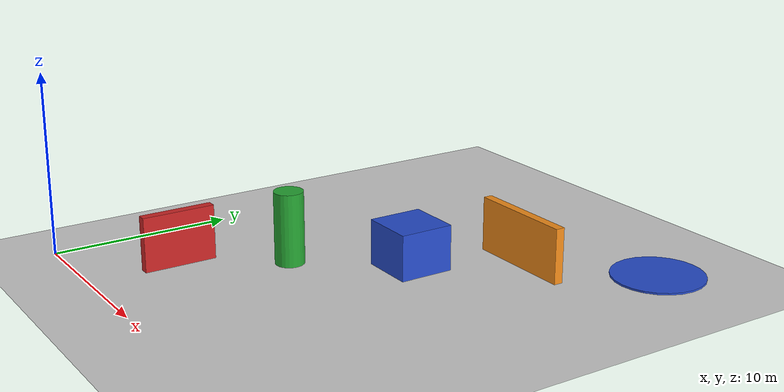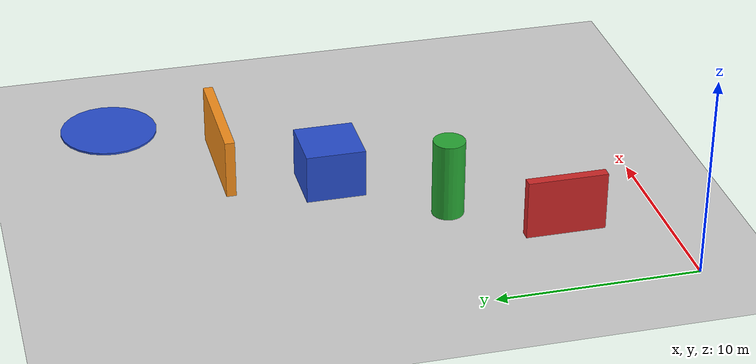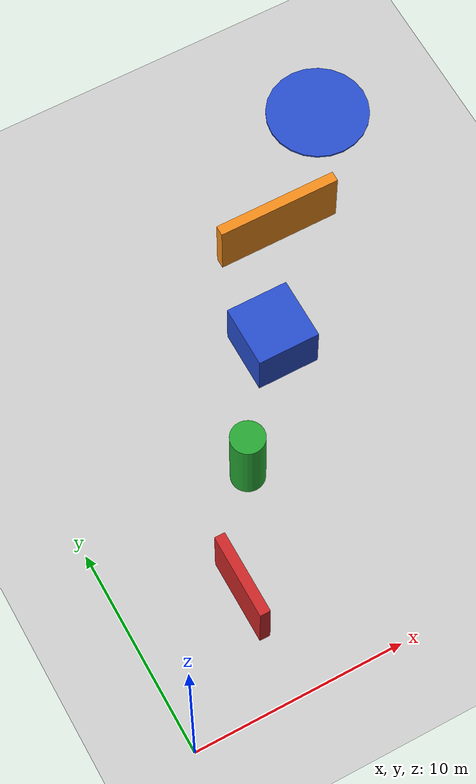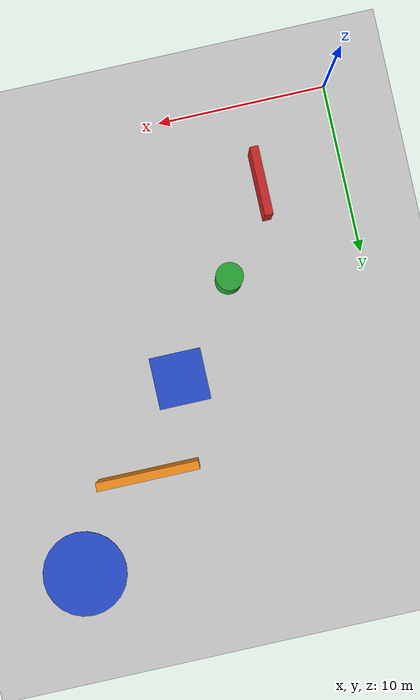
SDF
<?xml version="1.0" ?>
<sdf version="1.5">
  <world name="obstacle_world">
    <include><uri>model://sun</uri></include>
    <include><uri>model://ground_plane</uri></include>
    <include><uri>model://asphalt_plane</uri></include>

    <physics name='default_physics' default='0' type='ode'>
      <gravity>0 0 -9.8066</gravity>
      <ode>
        <solver><type>quick</type><iters>10</iters><sor>1.3</sor></solver>
        <constraints><cfm>0</cfm><erp>0.2</erp><contact_max_correcting_vel>100</contact_max_correcting_vel><contact_surface_layer>0.001</contact_surface_layer></constraints>
      </ode>
      <max_step_size>0.004</max_step_size>
      <real_time_factor>1</real_time_factor>
      <real_time_update_rate>250</real_time_update_rate>
    </physics>

    <model name="wall_1">
      <pose>5 5 1.5 0 0 0</pose>
      <static>true</static>
      <link name="link"><collision name="c"><geometry><box><size>0.5 4 3</size></box></geometry></collision><visual name="v"><geometry><box><size>0.5 4 3</size></box></geometry><material><script><name>Gazebo/Red</name></script></material></visual></link>
    </model>

    <model name="pole_1">
      <pose>8 10 2 0 0 0</pose>
      <static>true</static>
      <link name="link"><collision name="c"><geometry><cylinder><radius>0.8</radius><length>4</length></cylinder></geometry></collision><visual name="v"><geometry><cylinder><radius>0.8</radius><length>4</length></cylinder></geometry><material><script><name>Gazebo/Green</name></script></material></visual></link>
    </model>

    <model name="box_1">
      <pose>12 15 1.25 0 0 0</pose>
      <static>true</static>
      <link name="link"><collision name="c"><geometry><box><size>3 3 2.5</size></box></geometry></collision><visual name="v"><geometry><box><size>3 3 2.5</size></box></geometry><material><script><name>Gazebo/Blue</name></script></material></visual></link>
    </model>

    <model name="wall_2">
      <pose>15 20 1.5 0 0 1.57</pose>
      <static>true</static>
      <link name="link"><collision name="c"><geometry><box><size>0.5 6 3</size></box></geometry></collision><visual name="v"><geometry><box><size>0.5 6 3</size></box></geometry><material><script><name>Gazebo/Orange</name></script></material></visual></link>
    </model>

    <model name="delivery_zone">
      <pose>20 25 0.05 0 0 0</pose>
      <static>true</static>
      <link name="link"><visual name="v"><geometry><cylinder><radius>2.5</radius><length>0.1</length></cylinder></geometry><material><script><name>Gazebo/BlueLaser</name></script></material></visual></link>
    </model>
  </world>
</sdf>
